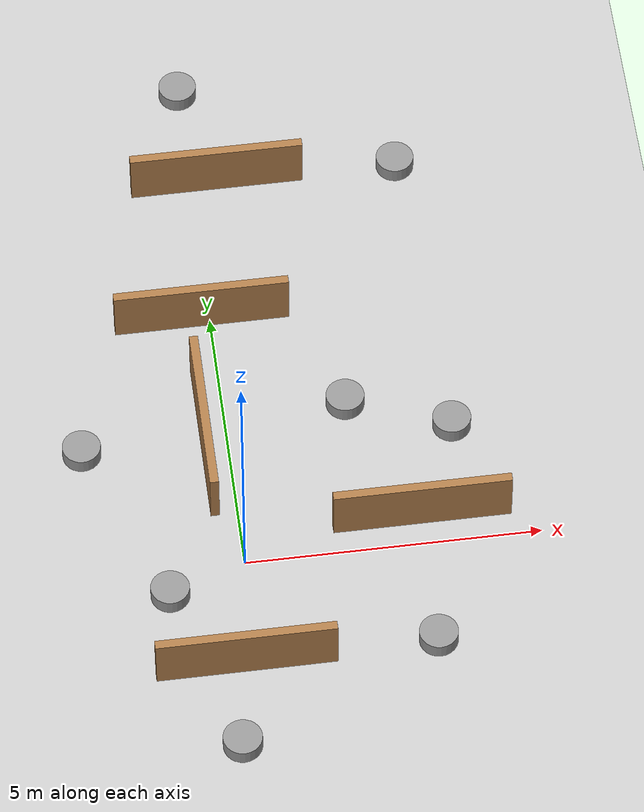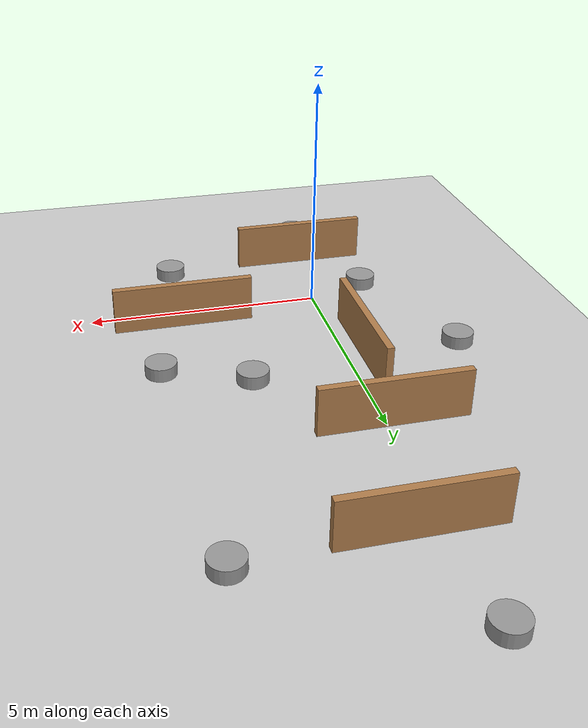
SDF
<sdf version="1.6">
 <world name="default">
  <model name="ground_plane">
   <static>1</static>
   <link name="link">
    <collision name="collision">
     <geometry><plane><normal>0 0 1</normal><size>100 100</size></plane></geometry>
     <surface><friction><ode><mu>100</mu><mu2>50</mu2></ode></friction></surface>
    </collision>
    <visual name="visual">
     <cast_shadows>0</cast_shadows>
     <geometry><plane><normal>0 0 1</normal><size>100 100</size></plane></geometry>
     <material>
      <script><uri>file://media/materials/scripts/gazebo.material</uri><name>Gazebo/Grey</name></script>
     </material>
    </visual>
   </link>
  </model>
  <model name="h_wall">
   <pose>-0.380823 2.51022 0 0 -0 0</pose>
   <link name="Wall_0">
    <collision name="Wall_0_Collision">
     <geometry><box><size>3 0.15 1</size></box></geometry>
     <pose>0 0 0.5 0 -0 0</pose>
    </collision>
    <visual name="Wall_0_Visual">
     <pose>0 0 0.5 0 -0 0</pose>
     <geometry><box><size>3 0.15 1</size></box></geometry>
     <material>
      <script><uri>file://media/materials/scripts/gazebo.material</uri><name>Gazebo/Wood</name></script>
      <ambient>1 1 1 1</ambient>
     </material>
     <meta><layer>0</layer></meta>
    </visual>
    <pose>0 0 0 0 -0 -1.5708</pose>
   </link>
   <static>1</static>
  </model>
  <model name="v_wall">
   <pose>-0.218292 -2.0316 0 0 -0 0</pose>
   <link name="Wall_0">
    <collision name="Wall_0_Collision">
     <geometry><box><size>3 0.15 1</size></box></geometry>
     <pose>0 0 0.5 0 -0 0</pose>
    </collision>
    <visual name="Wall_0_Visual">
     <pose>0 0 0.5 0 -0 0</pose>
     <geometry><box><size>3 0.15 1</size></box></geometry>
     <material>
      <script><uri>file://media/materials/scripts/gazebo.material</uri><name>Gazebo/Wood</name></script>
      <ambient>1 1 1 1</ambient>
     </material>
     <meta><layer>0</layer></meta>
    </visual>
   </link>
   <static>1</static>
  </model>
  <model name="c0_0">
   <link name="link">
    <inertial>
     <mass>1</mass>
     <inertia><ixx>0.145833</ixx><ixy>0</ixy><ixz>0</ixz><iyy>0.145833</iyy><iyz>0</iyz><izz>0.125</izz></inertia>
    </inertial>
    <visual name="visual">
     <geometry><cylinder><radius>0.326555</radius><length>0.51474</length></cylinder></geometry>
     <material>
      <script><name>Gazebo/Grey</name><uri>file://media/materials/scripts/gazebo.material</uri></script>
     </material>
    </visual>
    <collision name="collision">
     <geometry><cylinder><radius>0.326555</radius><length>0.51474</length></cylinder></geometry>
     <surface>
      <friction>
       <ode><mu>1</mu><mu2>1</mu2><fdir1>0 0 0</fdir1><slip1>0</slip1><slip2>0</slip2></ode>
       <torsional>
        <coefficient>1</coefficient>
        <patch_radius>0</patch_radius>
        <surface_radius>0</surface_radius>
        <use_patch_radius>1</use_patch_radius>
        <ode><slip>0</slip></ode>
       </torsional>
      </friction>
      <bounce><restitution_coefficient>0</restitution_coefficient><threshold>1e+06</threshold></bounce>
      <contact>
       <collide_without_contact>0</collide_without_contact>
       <collide_without_contact_bitmask>1</collide_without_contact_bitmask>
       <collide_bitmask>1</collide_bitmask>
       <ode>
        <soft_cfm>0</soft_cfm>
        <soft_erp>0.2</soft_erp>
        <kp>1e+13</kp>
        <kd>1</kd>
        <max_vel>0.01</max_vel>
        <min_depth>0</min_depth>
       </ode>
       <bullet>
        <split_impulse>1</split_impulse>
        <split_impulse_penetration_threshold>-0.01</split_impulse_penetration_threshold>
        <soft_cfm>0</soft_cfm>
        <soft_erp>0.2</soft_erp>
        <kp>1e+13</kp>
        <kd>1</kd>
       </bullet>
      </contact>
     </surface>
    </collision>
   </link>
   <static>1</static>
   <pose>2.07261 2.99442 0 0 -0 0</pose>
  </model>
  <model name="c0_1">
   <link name="link">
    <inertial>
     <mass>1</mass>
     <inertia><ixx>0.145833</ixx><ixy>0</ixy><ixz>0</ixz><iyy>0.145833</iyy><iyz>0</iyz><izz>0.125</izz></inertia>
    </inertial>
    <visual name="visual">
     <geometry><cylinder><radius>0.326555</radius><length>0.51474</length></cylinder></geometry>
     <material>
      <script><name>Gazebo/Grey</name><uri>file://media/materials/scripts/gazebo.material</uri></script>
     </material>
    </visual>
    <collision name="collision">
     <geometry><cylinder><radius>0.326555</radius><length>0.51474</length></cylinder></geometry>
     <surface>
      <friction>
       <ode><mu>1</mu><mu2>1</mu2><fdir1>0 0 0</fdir1><slip1>0</slip1><slip2>0</slip2></ode>
       <torsional>
        <coefficient>1</coefficient>
        <patch_radius>0</patch_radius>
        <surface_radius>0</surface_radius>
        <use_patch_radius>1</use_patch_radius>
        <ode><slip>0</slip></ode>
       </torsional>
      </friction>
      <bounce><restitution_coefficient>0</restitution_coefficient><threshold>1e+06</threshold></bounce>
      <contact>
       <collide_without_contact>0</collide_without_contact>
       <collide_without_contact_bitmask>1</collide_without_contact_bitmask>
       <collide_bitmask>1</collide_bitmask>
       <ode>
        <soft_cfm>0</soft_cfm>
        <soft_erp>0.2</soft_erp>
        <kp>1e+13</kp>
        <kd>1</kd>
        <max_vel>0.01</max_vel>
        <min_depth>0</min_depth>
       </ode>
       <bullet>
        <split_impulse>1</split_impulse>
        <split_impulse_penetration_threshold>-0.01</split_impulse_penetration_threshold>
        <soft_cfm>0</soft_cfm>
        <soft_erp>0.2</soft_erp>
        <kp>1e+13</kp>
        <kd>1</kd>
       </bullet>
      </contact>
     </surface>
    </collision>
   </link>
   <static>1</static>
   <pose>2.98172 -1.89646 0 0 -0 0</pose>
  </model>
  <model name="c0_2">
   <link name="link">
    <inertial>
     <mass>1</mass>
     <inertia><ixx>0.145833</ixx><ixy>0</ixy><ixz>0</ixz><iyy>0.145833</iyy><iyz>0</iyz><izz>0.125</izz></inertia>
    </inertial>
    <visual name="visual">
     <geometry><cylinder><radius>0.326555</radius><length>0.51474</length></cylinder></geometry>
     <material>
      <script><name>Gazebo/Grey</name><uri>file://media/materials/scripts/gazebo.material</uri></script>
     </material>
    </visual>
    <collision name="collision">
     <geometry><cylinder><radius>0.326555</radius><length>0.51474</length></cylinder></geometry>
     <surface>
      <friction>
       <ode><mu>1</mu><mu2>1</mu2><fdir1>0 0 0</fdir1><slip1>0</slip1><slip2>0</slip2></ode>
       <torsional>
        <coefficient>1</coefficient>
        <patch_radius>0</patch_radius>
        <surface_radius>0</surface_radius>
        <use_patch_radius>1</use_patch_radius>
        <ode><slip>0</slip></ode>
       </torsional>
      </friction>
      <bounce><restitution_coefficient>0</restitution_coefficient><threshold>1e+06</threshold></bounce>
      <contact>
       <collide_without_contact>0</collide_without_contact>
       <collide_without_contact_bitmask>1</collide_without_contact_bitmask>
       <collide_bitmask>1</collide_bitmask>
       <ode>
        <soft_cfm>0</soft_cfm>
        <soft_erp>0.2</soft_erp>
        <kp>1e+13</kp>
        <kd>1</kd>
        <max_vel>0.01</max_vel>
        <min_depth>0</min_depth>
       </ode>
       <bullet>
        <split_impulse>1</split_impulse>
        <split_impulse_penetration_threshold>-0.01</split_impulse_penetration_threshold>
        <soft_cfm>0</soft_cfm>
        <soft_erp>0.2</soft_erp>
        <kp>1e+13</kp>
        <kd>1</kd>
       </bullet>
      </contact>
     </surface>
    </collision>
   </link>
   <static>1</static>
   <pose>-2.46825 2.51908 0 0 -0 0</pose>
  </model>
  <model name="v_wall_0">
   <pose>3.03934 0.481545 0 0 -0 0</pose>
   <link name="Wall_0">
    <collision name="Wall_0_Collision">
     <geometry><box><size>3 0.15 1</size></box></geometry>
     <pose>0 0 0.5 0 -0 0</pose>
    </collision>
    <visual name="Wall_0_Visual">
     <pose>0 0 0.5 0 -0 0</pose>
     <geometry><box><size>3 0.15 1</size></box></geometry>
     <material>
      <script><uri>file://media/materials/scripts/gazebo.material</uri><name>Gazebo/Wood</name></script>
      <ambient>1 1 1 1</ambient>
     </material>
     <meta><layer>0</layer></meta>
    </visual>
   </link>
   <static>1</static>
  </model>
  <model name="c0_3">
   <link name="link">
    <inertial>
     <mass>1</mass>
     <inertia><ixx>0.145833</ixx><ixy>0</ixy><ixz>0</ixz><iyy>0.145833</iyy><iyz>0</iyz><izz>0.125</izz></inertia>
    </inertial>
    <visual name="visual">
     <geometry><cylinder><radius>0.326555</radius><length>0.51474</length></cylinder></geometry>
     <material>
      <script><name>Gazebo/Grey</name><uri>file://media/materials/scripts/gazebo.material</uri></script>
     </material>
    </visual>
    <collision name="collision">
     <geometry><cylinder><radius>0.326555</radius><length>0.51474</length></cylinder></geometry>
     <surface>
      <friction>
       <ode><mu>1</mu><mu2>1</mu2><fdir1>0 0 0</fdir1><slip1>0</slip1><slip2>0</slip2></ode>
       <torsional>
        <coefficient>1</coefficient>
        <patch_radius>0</patch_radius>
        <surface_radius>0</surface_radius>
        <use_patch_radius>1</use_patch_radius>
        <ode><slip>0</slip></ode>
       </torsional>
      </friction>
      <bounce><restitution_coefficient>0</restitution_coefficient><threshold>1e+06</threshold></bounce>
      <contact>
       <collide_without_contact>0</collide_without_contact>
       <collide_without_contact_bitmask>1</collide_without_contact_bitmask>
       <collide_bitmask>1</collide_bitmask>
       <ode>
        <soft_cfm>0</soft_cfm>
        <soft_erp>0.2</soft_erp>
        <kp>1e+13</kp>
        <kd>1</kd>
        <max_vel>0.01</max_vel>
        <min_depth>0</min_depth>
       </ode>
       <bullet>
        <split_impulse>1</split_impulse>
        <split_impulse_penetration_threshold>-0.01</split_impulse_penetration_threshold>
        <soft_cfm>0</soft_cfm>
        <soft_erp>0.2</soft_erp>
        <kp>1e+13</kp>
        <kd>1</kd>
       </bullet>
      </contact>
     </surface>
    </collision>
   </link>
   <static>1</static>
   <pose>-1.30796 -0.471901 0 0 -0 0</pose>
  </model>
  <model name="c0_4">
   <link name="link">
    <inertial>
     <mass>1</mass>
     <inertia><ixx>0.145833</ixx><ixy>0</ixy><ixz>0</ixz><iyy>0.145833</iyy><iyz>0</iyz><izz>0.125</izz></inertia>
    </inertial>
    <visual name="visual">
     <geometry><cylinder><radius>0.326555</radius><length>0.51474</length></cylinder></geometry>
     <material>
      <script><name>Gazebo/Grey</name><uri>file://media/materials/scripts/gazebo.material</uri></script>
     </material>
    </visual>
    <collision name="collision">
     <geometry><cylinder><radius>0.326555</radius><length>0.51474</length></cylinder></geometry>
     <surface>
      <friction>
       <ode><mu>1</mu><mu2>1</mu2><fdir1>0 0 0</fdir1><slip1>0</slip1><slip2>0</slip2></ode>
       <torsional>
        <coefficient>1</coefficient>
        <patch_radius>0</patch_radius>
        <surface_radius>0</surface_radius>
        <use_patch_radius>1</use_patch_radius>
        <ode><slip>0</slip></ode>
       </torsional>
      </friction>
      <bounce><restitution_coefficient>0</restitution_coefficient><threshold>1e+06</threshold></bounce>
      <contact>
       <collide_without_contact>0</collide_without_contact>
       <collide_without_contact_bitmask>1</collide_without_contact_bitmask>
       <collide_bitmask>1</collide_bitmask>
       <ode>
        <soft_cfm>0</soft_cfm>
        <soft_erp>0.2</soft_erp>
        <kp>1e+13</kp>
        <kd>1</kd>
        <max_vel>0.01</max_vel>
        <min_depth>0</min_depth>
       </ode>
       <bullet>
        <split_impulse>1</split_impulse>
        <split_impulse_penetration_threshold>-0.01</split_impulse_penetration_threshold>
        <soft_cfm>0</soft_cfm>
        <soft_erp>0.2</soft_erp>
        <kp>1e+13</kp>
        <kd>1</kd>
       </bullet>
      </contact>
     </surface>
    </collision>
   </link>
   <static>1</static>
   <pose>-0.465784 -3.4973 0 0 -0 0</pose>
  </model>
  <model name="c0_5">
   <link name="link">
    <inertial>
     <mass>1</mass>
     <inertia><ixx>0.145833</ixx><ixy>0</ixy><ixz>0</ixz><iyy>0.145833</iyy><iyz>0</iyz><izz>0.125</izz></inertia>
    </inertial>
    <visual name="visual">
     <geometry><cylinder><radius>0.326555</radius><length>0.51474</length></cylinder></geometry>
     <material>
      <script><name>Gazebo/Grey</name><uri>file://media/materials/scripts/gazebo.material</uri></script>
     </material>
    </visual>
    <collision name="collision">
     <geometry><cylinder><radius>0.326555</radius><length>0.51474</length></cylinder></geometry>
     <surface>
      <friction>
       <ode><mu>1</mu><mu2>1</mu2><fdir1>0 0 0</fdir1><slip1>0</slip1><slip2>0</slip2></ode>
       <torsional>
        <coefficient>1</coefficient>
        <patch_radius>0</patch_radius>
        <surface_radius>0</surface_radius>
        <use_patch_radius>1</use_patch_radius>
        <ode><slip>0</slip></ode>
       </torsional>
      </friction>
      <bounce><restitution_coefficient>0</restitution_coefficient><threshold>1e+06</threshold></bounce>
      <contact>
       <collide_without_contact>0</collide_without_contact>
       <collide_without_contact_bitmask>1</collide_without_contact_bitmask>
       <collide_bitmask>1</collide_bitmask>
       <ode>
        <soft_cfm>0</soft_cfm>
        <soft_erp>0.2</soft_erp>
        <kp>1e+13</kp>
        <kd>1</kd>
        <max_vel>0.01</max_vel>
        <min_depth>0</min_depth>
       </ode>
       <bullet>
        <split_impulse>1</split_impulse>
        <split_impulse_penetration_threshold>-0.01</split_impulse_penetration_threshold>
        <soft_cfm>0</soft_cfm>
        <soft_erp>0.2</soft_erp>
        <kp>1e+13</kp>
        <kd>1</kd>
       </bullet>
      </contact>
     </surface>
    </collision>
   </link>
   <static>1</static>
   <pose>3.80076 2.31819 0 0 -0 0</pose>
  </model>
  <model name="v_wall_1">
   <pose>0.46299 7.87244 0 0 -0 0</pose>
   <link name="Wall_0">
    <collision name="Wall_0_Collision">
     <geometry><box><size>3 0.15 1</size></box></geometry>
     <pose>0 0 0.5 0 -0 0</pose>
    </collision>
    <visual name="Wall_0_Visual">
     <pose>0 0 0.5 0 -0 0</pose>
     <geometry><box><size>3 0.15 1</size></box></geometry>
     <material>
      <script><uri>file://media/materials/scripts/gazebo.material</uri><name>Gazebo/Wood</name></script>
      <ambient>1 1 1 1</ambient>
     </material>
     <meta><layer>0</layer></meta>
    </visual>
   </link>
   <static>1</static>
  </model>
  <model name="c0_6">
   <link name="link">
    <inertial>
     <mass>1</mass>
     <inertia><ixx>0.145833</ixx><ixy>0</ixy><ixz>0</ixz><iyy>0.145833</iyy><iyz>0</iyz><izz>0.125</izz></inertia>
    </inertial>
    <visual name="visual">
     <geometry><cylinder><radius>0.326555</radius><length>0.51474</length></cylinder></geometry>
     <material>
      <script><name>Gazebo/Grey</name><uri>file://media/materials/scripts/gazebo.material</uri></script>
     </material>
    </visual>
    <collision name="collision">
     <geometry><cylinder><radius>0.326555</radius><length>0.51474</length></cylinder></geometry>
     <surface>
      <friction>
       <ode><mu>1</mu><mu2>1</mu2><fdir1>0 0 0</fdir1><slip1>0</slip1><slip2>0</slip2></ode>
       <torsional>
        <coefficient>1</coefficient>
        <patch_radius>0</patch_radius>
        <surface_radius>0</surface_radius>
        <use_patch_radius>1</use_patch_radius>
        <ode><slip>0</slip></ode>
       </torsional>
      </friction>
      <bounce><restitution_coefficient>0</restitution_coefficient><threshold>1e+06</threshold></bounce>
      <contact>
       <collide_without_contact>0</collide_without_contact>
       <collide_without_contact_bitmask>1</collide_without_contact_bitmask>
       <collide_bitmask>1</collide_bitmask>
       <ode>
        <soft_cfm>0</soft_cfm>
        <soft_erp>0.2</soft_erp>
        <kp>1e+13</kp>
        <kd>1</kd>
        <max_vel>0.01</max_vel>
        <min_depth>0</min_depth>
       </ode>
       <bullet>
        <split_impulse>1</split_impulse>
        <split_impulse_penetration_threshold>-0.01</split_impulse_penetration_threshold>
        <soft_cfm>0</soft_cfm>
        <soft_erp>0.2</soft_erp>
        <kp>1e+13</kp>
        <kd>1</kd>
       </bullet>
      </contact>
     </surface>
    </collision>
   </link>
   <static>1</static>
   <pose>3.59696 7.90437 0 0 -0 0</pose>
  </model>
  <model name="c0_7">
   <link name="link">
    <inertial>
     <mass>1</mass>
     <inertia><ixx>0.145833</ixx><ixy>0</ixy><ixz>0</ixz><iyy>0.145833</iyy><iyz>0</iyz><izz>0.125</izz></inertia>
    </inertial>
    <visual name="visual">
     <geometry><cylinder><radius>0.326555</radius><length>0.51474</length></cylinder></geometry>
     <material>
      <script><name>Gazebo/Grey</name><uri>file://media/materials/scripts/gazebo.material</uri></script>
     </material>
    </visual>
    <collision name="collision">
     <geometry><cylinder><radius>0.326555</radius><length>0.51474</length></cylinder></geometry>
     <surface>
      <friction>
       <ode><mu>1</mu><mu2>1</mu2><fdir1>0 0 0</fdir1><slip1>0</slip1><slip2>0</slip2></ode>
       <torsional>
        <coefficient>1</coefficient>
        <patch_radius>0</patch_radius>
        <surface_radius>0</surface_radius>
        <use_patch_radius>1</use_patch_radius>
        <ode><slip>0</slip></ode>
       </torsional>
      </friction>
      <bounce><restitution_coefficient>0</restitution_coefficient><threshold>1e+06</threshold></bounce>
      <contact>
       <collide_without_contact>0</collide_without_contact>
       <collide_without_contact_bitmask>1</collide_without_contact_bitmask>
       <collide_bitmask>1</collide_bitmask>
       <ode>
        <soft_cfm>0</soft_cfm>
        <soft_erp>0.2</soft_erp>
        <kp>1e+13</kp>
        <kd>1</kd>
        <max_vel>0.01</max_vel>
        <min_depth>0</min_depth>
       </ode>
       <bullet>
        <split_impulse>1</split_impulse>
        <split_impulse_penetration_threshold>-0.01</split_impulse_penetration_threshold>
        <soft_cfm>0</soft_cfm>
        <soft_erp>0.2</soft_erp>
        <kp>1e+13</kp>
        <kd>1</kd>
       </bullet>
      </contact>
     </surface>
    </collision>
   </link>
   <static>1</static>
   <pose>0.008174 9.93887 0 0 -0 0</pose>
  </model>
  <model name="v_wall_1_clone">
   <pose>-0.137429 4.98976 0 0 -0 0</pose>
   <link name="Wall_0">
    <collision name="Wall_0_Collision">
     <geometry><box><size>3 0.15 1</size></box></geometry>
     <pose>0 0 0.5 0 -0 0</pose>
    </collision>
    <visual name="Wall_0_Visual">
     <pose>0 0 0.5 0 -0 0</pose>
     <geometry><box><size>3 0.15 1</size></box></geometry>
     <material>
      <script><uri>file://media/materials/scripts/gazebo.material</uri><name>Gazebo/Wood</name></script>
      <ambient>1 1 1 1</ambient>
     </material>
     <meta><layer>0</layer></meta>
    </visual>
   </link>
   <static>1</static>
  </model>
 </world>
</sdf>
